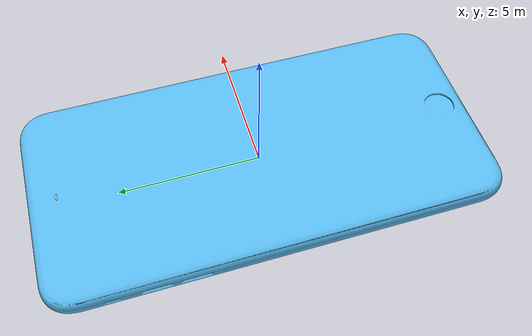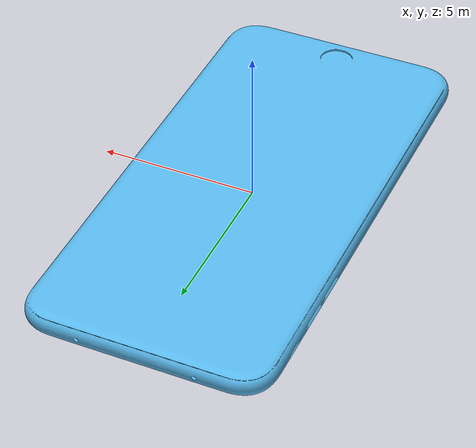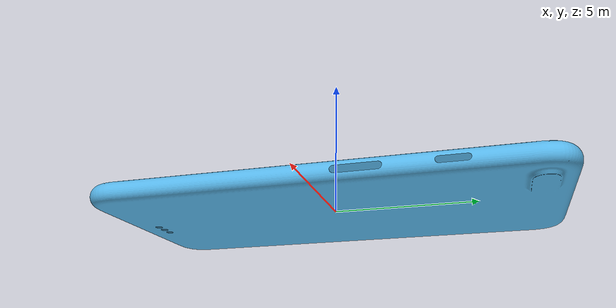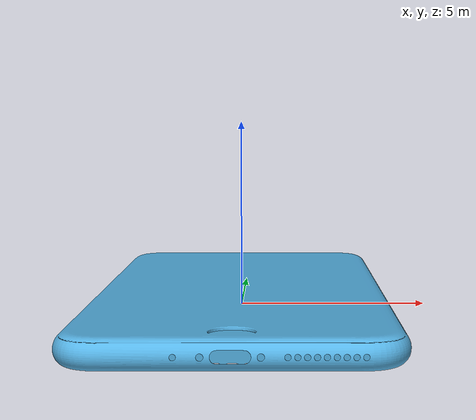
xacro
<?xml version = "1.0" ?>
<robot name = "phone" xmlns:xacro = "https://www.ros.org/wiki/xacro">
  <!-- include xacro files -->
  <xacro:include filename = "$(find phone_description)/urdf/phone.gazebo"/>
  <!-- define a dummy link -->
  <link name = "base_link"/>

  <link name = "phone_link">
    <inertial>
      <origin rpy = "0 0 0" xyz = "0 0 2" />
      <mass value = "1.6"/>
      <inertia ixx = "0.07" ixy = "0" ixz = "0" iyy = "0.08" iyz = "0" izz = "0.10"/>
    </inertial>
    <collision name = "collision">
      <geometry>
        <mesh filename = "package://phone_description/meshes/phone_new.dae" scale="100 100 100"/>
      </geometry>
    </collision>
    <visual name = "visual">
      <geometry>
        <mesh filename = "package://phone_description/meshes/phone_new.dae" scale="100 100 100"/>
      </geometry>
    </visual>
  </link>

  <!-- define the base joint -->
  <joint name = "base_joint" type = "fixed">
    <parent link = "base_link"/>
    <child link = "phone_link"/>
  </joint>
</robot>
